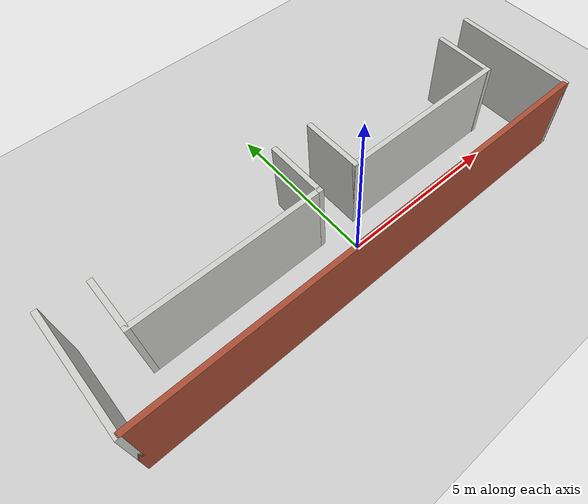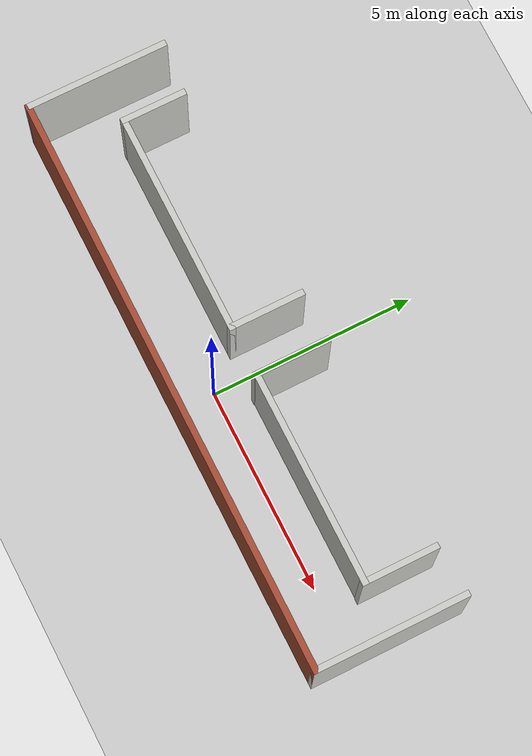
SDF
<sdf version="1.7">
 <world name="default">
  <light name="sun" type="directional">
   <pose>0 0 10 0 -0 0</pose>
   <diffuse>0.8 0.8 0.8 1</diffuse>
   <specular>0.2 0.2 0.2 1</specular>
   <attenuation>
    <range>1000</range>
    <constant>0.9</constant>
    <linear>0.01</linear>
    <quadratic>0.001</quadratic>
   </attenuation>
   <direction>-0.5 0.1 -0.9</direction>
   <spot><inner_angle>0</inner_angle><outer_angle>0</outer_angle><falloff>0</falloff></spot>
  </light>
  <model name="ground_plane">
   <static>1</static>
   <link name="link">
    <collision name="collision">
     <geometry><plane><normal>0 0 1</normal><size>100 100</size></plane></geometry>
     <surface><friction><ode><mu>100</mu><mu2>50</mu2></ode></friction></surface>
    </collision>
    <visual name="visual">
     <cast_shadows>0</cast_shadows>
     <geometry><plane><normal>0 0 1</normal><size>100 100</size></plane></geometry>
     <material>
      <script><uri>file://media/materials/scripts/gazebo.material</uri><name>Gazebo/Grey</name></script>
     </material>
    </visual>
   </link>
  </model>
  <gravity>0 0 -9.8</gravity>
  <magnetic_field>6e-06 2.3e-05 -4.2e-05</magnetic_field>
  <atmosphere type="adiabatic"/>
  <physics type="ode">
   <max_step_size>0.001</max_step_size>
   <real_time_factor>1</real_time_factor>
   <real_time_update_rate>1000</real_time_update_rate>
  </physics>
  <scene><ambient>0.4 0.4 0.4 1</ambient><background>0.7 0.7 0.7 1</background><shadows>1</shadows></scene>
  <spherical_coordinates>
   <surface_model>EARTH_WGS84</surface_model>
   <latitude_deg>0</latitude_deg>
   <longitude_deg>0</longitude_deg>
   <elevation>0</elevation>
   <heading_deg>0</heading_deg>
  </spherical_coordinates>
  <model name="path_palan_test_world">
   <pose>-0.186224 0.807224 0 0 -0 0</pose>
   <link name="Wall_15">
    <collision name="Wall_15_Collision">
     <geometry><box><size>3.5 0.15 2.5</size></box></geometry>
     <pose>0 0 1.25 0 -0 0</pose>
    </collision>
    <visual name="Wall_15_Visual">
     <pose>0 0 1.25 0 -0 0</pose>
     <geometry><box><size>3.5 0.15 2.5</size></box></geometry>
     <material>
      <script><uri>file://media/materials/scripts/gazebo.material</uri><name>Gazebo/CeilingTiled</name></script>
      <ambient>1 1 1 1</ambient>
     </material>
     <meta><layer>0</layer></meta>
    </visual>
    <pose>-7.05 -0.125 0 0 -0 1.5708</pose>
   </link>
   <link name="Wall_27">
    <collision name="Wall_27_Collision">
     <geometry><box><size>1.856 0.15 2.5</size></box></geometry>
     <pose>0 0 1.25 0 -0 0</pose>
    </collision>
    <visual name="Wall_27_Visual">
     <pose>0 0 1.25 0 -0 0</pose>
     <geometry><box><size>1.856 0.15 2.5</size></box></geometry>
     <material>
      <script><uri>file://media/materials/scripts/gazebo.material</uri><name>Gazebo/CeilingTiled</name></script>
      <ambient>0 0 0 1</ambient>
     </material>
     <meta><layer>0</layer></meta>
    </visual>
    <pose>-0.455213 0.823354 0 0 -0 1.5708</pose>
   </link>
   <link name="Wall_30">
    <collision name="Wall_30_Collision">
     <geometry><box><size>1.86902 0.15 2.5</size></box></geometry>
     <pose>0 0 1.25 0 -0 0</pose>
    </collision>
    <visual name="Wall_30_Visual">
     <pose>0 0 1.25 0 -0 0</pose>
     <geometry><box><size>1.86902 0.15 2.5</size></box></geometry>
     <material>
      <script><uri>file://media/materials/scripts/gazebo.material</uri><name>Gazebo/CeilingTiled</name></script>
      <ambient>0 0 0 1</ambient>
     </material>
     <meta><layer>0</layer></meta>
    </visual>
    <pose>0.744787 0.834133 0 0 -0 1.5708</pose>
   </link>
   <link name="Wall_35">
    <collision name="Wall_35_Collision">
     <geometry><box><size>5.5 0.15 2.5</size></box></geometry>
     <pose>0 0 1.25 0 -0 0</pose>
    </collision>
    <visual name="Wall_35_Visual">
     <pose>0 0 1.25 0 -0 0</pose>
     <geometry><box><size>5.5 0.15 2.5</size></box></geometry>
     <material>
      <script><uri>file://media/materials/scripts/gazebo.material</uri><name>Gazebo/CeilingTiled</name></script>
      <ambient>1 1 1 1</ambient>
     </material>
     <meta><layer>0</layer></meta>
    </visual>
    <pose>-3.13021 -0.029546 0 0 -0 3.14159</pose>
   </link>
   <link name="Wall_40">
    <collision name="Wall_40_Collision">
     <geometry><box><size>1.60604 0.15 2.5</size></box></geometry>
     <pose>0 0 1.25 0 -0 0</pose>
    </collision>
    <visual name="Wall_40_Visual">
     <pose>0 0 1.25 0 -0 0</pose>
     <geometry><box><size>1.60604 0.15 2.5</size></box></geometry>
     <material>
      <script><uri>file://media/materials/scripts/gazebo.material</uri><name>Gazebo/CeilingTiled</name></script>
      <ambient>0 0 0 1</ambient>
     </material>
     <meta><layer>0</layer></meta>
    </visual>
    <pose>-5.80521 0.698354 0 0 -0 1.5708</pose>
   </link>
   <link name="Wall_42">
    <collision name="Wall_42_Collision">
     <geometry><box><size>5.25 0.15 2.5</size></box></geometry>
     <pose>0 0 1.25 0 -0 0</pose>
    </collision>
    <visual name="Wall_42_Visual">
     <pose>0 0 1.25 0 -0 0</pose>
     <geometry><box><size>5.25 0.15 2.5</size></box></geometry>
     <material>
      <script><uri>file://media/materials/scripts/gazebo.material</uri><name>Gazebo/CeilingTiled</name></script>
      <ambient>1 1 1 1</ambient>
     </material>
     <meta><layer>0</layer></meta>
    </visual>
    <pose>3.29479 -0.012155 0 0 -0 0</pose>
   </link>
   <link name="Wall_44">
    <collision name="Wall_44_Collision">
     <geometry><box><size>1.86902 0.15 2.5</size></box></geometry>
     <pose>0 0 1.25 0 -0 0</pose>
    </collision>
    <visual name="Wall_44_Visual">
     <pose>0 0 1.25 0 -0 0</pose>
     <geometry><box><size>1.86902 0.15 2.5</size></box></geometry>
     <material>
      <script><uri>file://media/materials/scripts/gazebo.material</uri><name>Gazebo/CeilingTiled</name></script>
      <ambient>0 0 0 1</ambient>
     </material>
     <meta><layer>0</layer></meta>
    </visual>
    <pose>5.84479 0.834133 0 0 -0 1.5708</pose>
   </link>
   <link name="Wall_46">
    <collision name="Wall_46_Collision">
     <geometry><box><size>3.75 0.15 2.5</size></box></geometry>
     <pose>0 0 1.25 0 -0 0</pose>
    </collision>
    <visual name="Wall_46_Visual">
     <pose>0 0 1.25 0 -0 0</pose>
     <geometry><box><size>3.75 0.15 2.5</size></box></geometry>
     <material>
      <script><uri>file://media/materials/scripts/gazebo.material</uri><name>Gazebo/CeilingTiled</name></script>
      <ambient>1 1 1 1</ambient>
     </material>
     <meta><layer>0</layer></meta>
    </visual>
    <pose>7.05 -0 0 0 -0 1.5708</pose>
   </link>
   <link name="Wall_6">
    <collision name="Wall_6_Collision">
     <geometry><box><size>14.25 0.15 2.5</size></box></geometry>
     <pose>0 0 1.25 0 -0 0</pose>
    </collision>
    <visual name="Wall_6_Visual">
     <pose>0 0 1.25 0 -0 0</pose>
     <geometry><box><size>14.25 0.15 2.5</size></box></geometry>
     <material>
      <script><uri>file://media/materials/scripts/gazebo.material</uri><name>Gazebo/Bricks</name></script>
      <ambient>1 1 1 1</ambient>
     </material>
     <meta><layer>0</layer></meta>
    </visual>
    <pose>0 -1.8 0 0 -0 0</pose>
   </link>
   <static>1</static>
  </model>
 </world>
</sdf>
